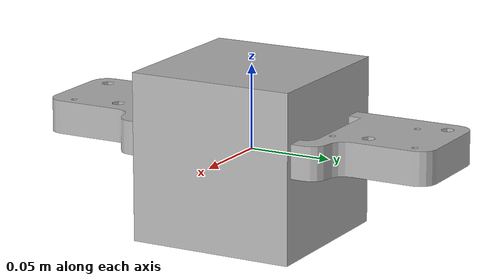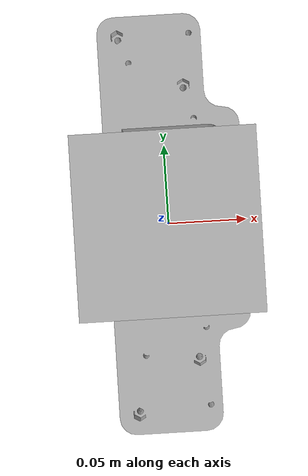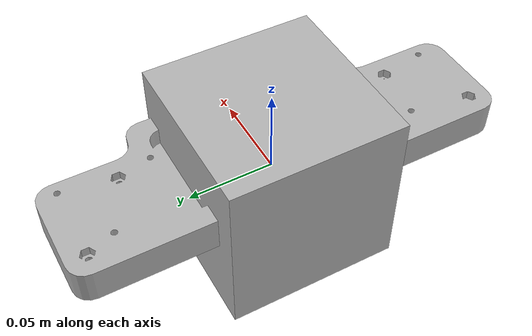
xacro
<?xml version="1.0" encoding="utf-8"?>
<robot xmlns:xacro="http://www.ros.org/wiki/xacro" name="adapter_iso50_kinect2">

  <!-- Define Grey material -->
  <material name="Grey">
    <color rgba="0.7 0.7 0.7 1.0"/>
  </material>

  <!-- Define a base_link as the parent reference -->
  <link name="base_link">
    <visual>
      <geometry>
        <box size="0.1 0.1 0.1"/>
      </geometry>
      <material name="Grey"/>
    </visual>
  </link>

  <!-- Define the adapter macro -->
  <xacro:macro name="adapter_iso50_kinect2_xacro" params="prefix parent *origin">

    <!-- Joint connecting the parent to our frame_in -->
    <joint name="${prefix}_adapter_iso50_kinect2_joint" type="fixed">
      <xacro:insert_block name="origin"/>
      <parent link="${parent}"/>
      <child link="${prefix}_adapter_iso50_kinect2_frame_in"/>
    </joint>

    <!-- Link for the adapter plate -->
    <link name="${prefix}_adapter_iso50_kinect2_frame_in">
      <visual>
        <origin rpy="0 0 0" xyz="0 0 0"/>
        <geometry>
          <mesh filename="package://iai_adapter_iso50_kinect2_description/meshes/adapter_iso50_kinect2.stl" scale="1 1 1"/>
        </geometry>
        <material name="Grey"/>
      </visual>
      <collision>
        <origin xyz="0 0 0" rpy="0 0 0"/>
        <geometry>
          <mesh filename="package://iai_adapter_iso50_kinect2_description/meshes/adapter_iso50_kinect2.stl" scale="1 1 1"/>
        </geometry>
      </collision>
    </link>

    <!-- Empty link just to get the frame out -->
    <link name="${prefix}_adapter_iso50_kinect2_frame_out"/>

    <!-- Joint positioning the frame_out -->
    <joint name="${prefix}_adapter_iso50_kinect2_trans_frame_out" type="fixed">
      <origin xyz="0 0 0.020" rpy="0 0 0"/>
      <parent link="${prefix}_adapter_iso50_kinect2_frame_in"/>
      <child link="${prefix}_adapter_iso50_kinect2_frame_out"/>
    </joint>

  </xacro:macro>

  <!-- Instantiate the macro to include it in the URDF -->
  <xacro:adapter_iso50_kinect2_xacro prefix="adapter" parent="base_link">
    <origin xyz="0 0 0" rpy="0 0 0"/>
  </xacro:adapter_iso50_kinect2_xacro>

</robot>
